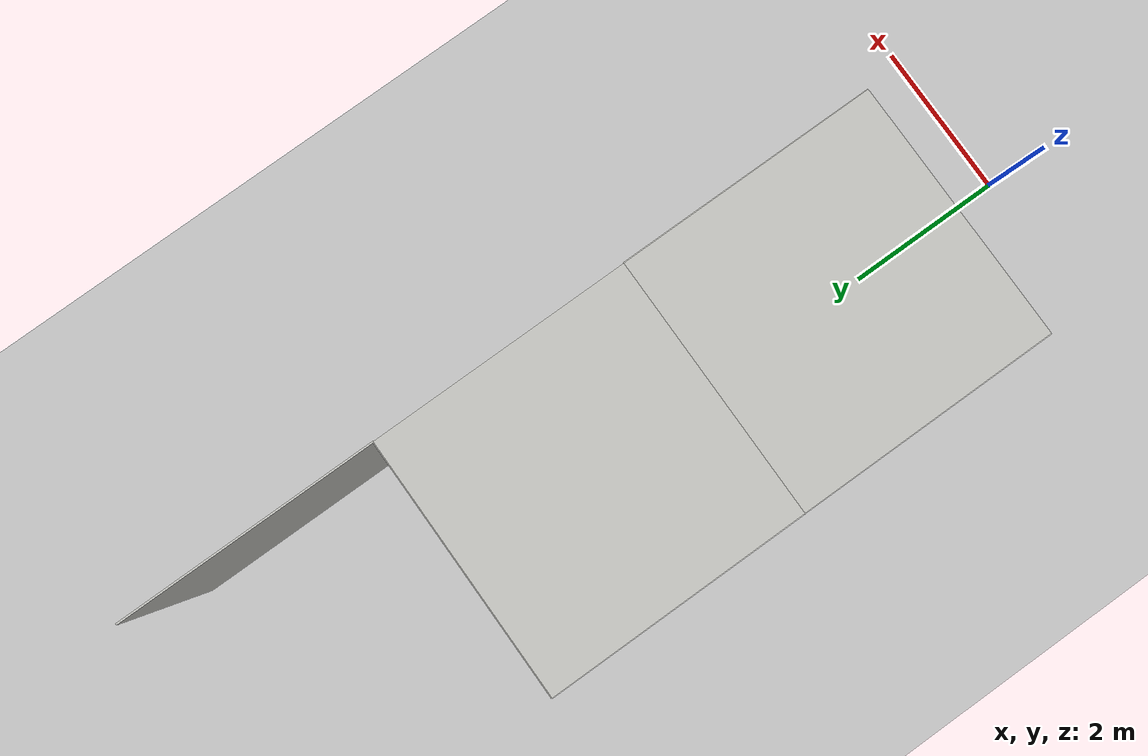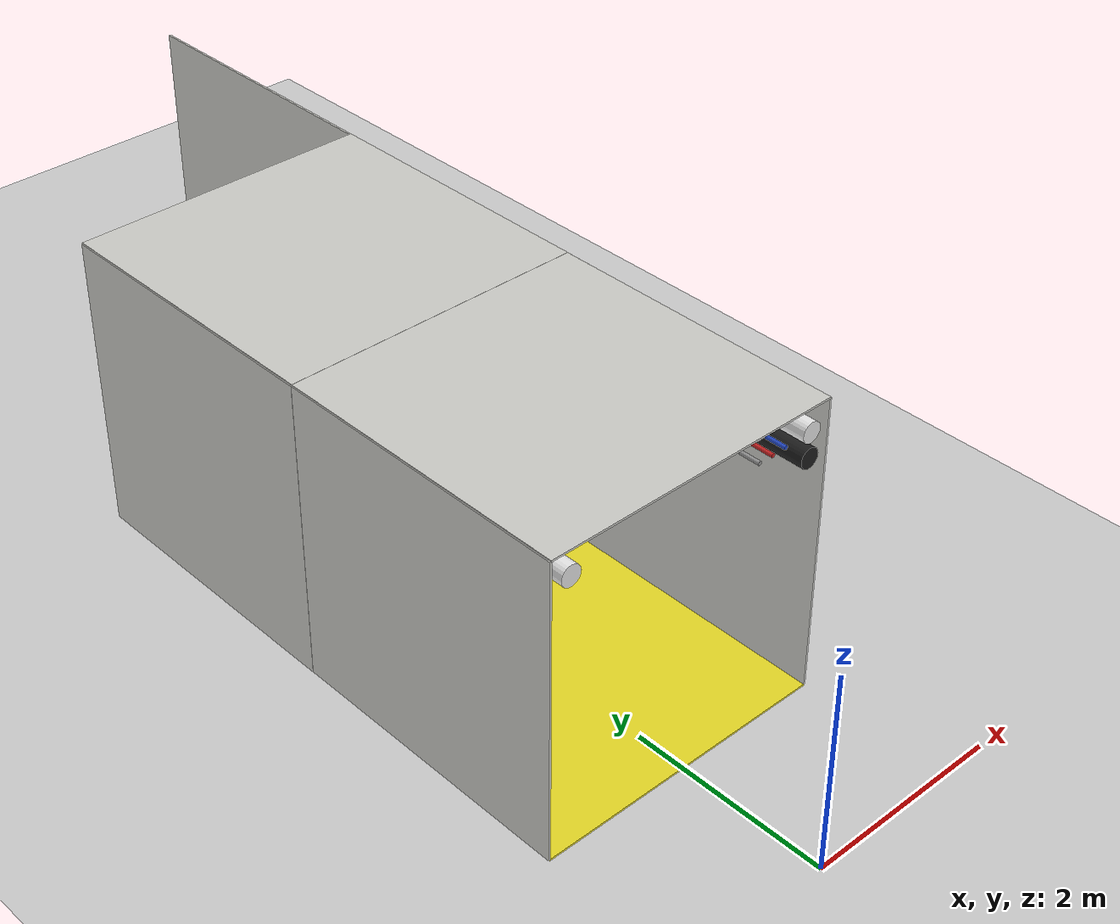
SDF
<sdf version="1.6">
 <world name="default">
  <model name="ground_plane">
   <static>1</static>
   <link name="link">
    <collision name="collision">
     <geometry><plane><normal>0 0 1</normal><size>200 200</size></plane></geometry>
     <surface><friction><ode><mu>100</mu><mu2>50</mu2></ode></friction></surface>
    </collision>
    <visual name="visual">
     <cast_shadows>0</cast_shadows>
     <geometry><plane><normal>0 0 1</normal><size>200 200</size></plane></geometry>
     <material>
      <script><uri>file://media/materials/scripts/gazebo.material</uri><name>Gazebo/Grey</name></script>
     </material>
    </visual>
   </link>
  </model>
  <model name="white_pipe_left_0_1_0_1">
   <static>1</static>
   <pose>0.0 3.0 2.76 0.0 0.0 0.0</pose>
   <link name="link_0">
    <visual name="visual">
     <pose>-1.3 0 0 1.57 0 0</pose>
     <geometry><cylinder><radius>0.1</radius><length>3</length></cylinder></geometry>
     <material>
      <script><uri>file://media/materials/scripts/gazebo.material</uri><name>Gazebo/White</name></script>
     </material>
    </visual>
    <collision name="collision">
     <pose>-1.3 0 0 1.57 0 0</pose>
     <geometry><cylinder><radius>0.1</radius><length>3</length></cylinder></geometry>
    </collision>
   </link>
  </model>
  <model name="white_pipe_right_0_1_0_1">
   <static>1</static>
   <pose>0.0 3.0 2.76 0.0 0.0 0.0</pose>
   <link name="link_0">
    <visual name="visual">
     <pose>1.3 0 0 1.57 0 0</pose>
     <geometry><cylinder><radius>0.1</radius><length>3</length></cylinder></geometry>
     <material>
      <script><uri>file://media/materials/scripts/gazebo.material</uri><name>Gazebo/White</name></script>
     </material>
    </visual>
    <collision name="collision">
     <pose>1.3 0 0 1.57 0 0</pose>
     <geometry><cylinder><radius>0.1</radius><length>3</length></cylinder></geometry>
    </collision>
   </link>
  </model>
  <model name="black_pipe_right_0_1_0_1">
   <static>1</static>
   <pose>0.0 3.0 2.76 0.0 0.0 0.0</pose>
   <link name="link_0">
    <visual name="visual">
     <pose>1.3 0 -0.25 1.57 0 0</pose>
     <geometry><cylinder><radius>0.1</radius><length>3</length></cylinder></geometry>
     <material>
      <script><uri>file://media/materials/scripts/gazebo.material</uri><name>Gazebo/Black</name></script>
     </material>
    </visual>
    <collision name="collision">
     <pose>1.3 0 -0.25 1.57 0 0</pose>
     <geometry><cylinder><radius>0.1</radius><length>3</length></cylinder></geometry>
    </collision>
   </link>
  </model>
  <model name="grey_pipe_right_0_1_0_1">
   <static>1</static>
   <pose>0.0 3.0 2.76 0.0 0.0 0.0</pose>
   <link name="link_0">
    <visual name="visual">
     <pose>0.7 0 0 1.57 0 0</pose>
     <geometry><cylinder><radius>0.02</radius><length>3</length></cylinder></geometry>
     <material>
      <script><uri>file://media/materials/scripts/gazebo.material</uri><name>Gazebo/Grey</name></script>
     </material>
    </visual>
    <collision name="collision">
     <pose>0.7 0 0 1.57 0 0</pose>
     <geometry><cylinder><radius>0.02</radius><length>3</length></cylinder></geometry>
    </collision>
   </link>
  </model>
  <model name="red_pipe_right_0_1_0_1">
   <static>1</static>
   <pose>0.0 3.0 2.76 0.0 0.0 0.0</pose>
   <link name="link_0">
    <visual name="visual">
     <pose>0.85 0 0 1.57 0 0</pose>
     <geometry><cylinder><radius>0.02</radius><length>3</length></cylinder></geometry>
     <material>
      <script><uri>file://media/materials/scripts/gazebo.material</uri><name>Gazebo/Red</name></script>
     </material>
    </visual>
    <collision name="collision">
     <pose>0.85 0 0 1.57 0 0</pose>
     <geometry><cylinder><radius>0.02</radius><length>3</length></cylinder></geometry>
    </collision>
   </link>
  </model>
  <model name="blue_pipe_right_0_1_0_1">
   <static>1</static>
   <pose>0.0 3.0 2.76 0.0 0.0 0.0</pose>
   <link name="link_0">
    <visual name="visual">
     <pose>1 0 0 1.57 0 0</pose>
     <geometry><cylinder><radius>0.02</radius><length>3</length></cylinder></geometry>
     <material>
      <script><uri>file://media/materials/scripts/gazebo.material</uri><name>Gazebo/Blue</name></script>
     </material>
    </visual>
    <collision name="collision">
     <pose>1 0 0 1.57 0 0</pose>
     <geometry><cylinder><radius>0.02</radius><length>3</length></cylinder></geometry>
    </collision>
   </link>
  </model>
  <model name="white_pipe_right_0_2_0_2">
   <static>1</static>
   <pose>0.0 6.0 2.76 0.0 0.0 0.0</pose>
   <link name="link_0">
    <visual name="visual">
     <pose>1.3 0 0 1.57 0 0</pose>
     <geometry><cylinder><radius>0.1</radius><length>3</length></cylinder></geometry>
     <material>
      <script><uri>file://media/materials/scripts/gazebo.material</uri><name>Gazebo/White</name></script>
     </material>
    </visual>
    <collision name="collision">
     <pose>1.3 0 0 1.57 0 0</pose>
     <geometry><cylinder><radius>0.1</radius><length>3</length></cylinder></geometry>
    </collision>
   </link>
  </model>
  <model name="black_pipe_right_0_2_0_2">
   <static>1</static>
   <pose>0.0 6.0 2.76 0.0 0.0 0.0</pose>
   <link name="link_0">
    <visual name="visual">
     <pose>1.3 0 -0.25 1.57 0 0</pose>
     <geometry><cylinder><radius>0.1</radius><length>3</length></cylinder></geometry>
     <material>
      <script><uri>file://media/materials/scripts/gazebo.material</uri><name>Gazebo/Black</name></script>
     </material>
    </visual>
    <collision name="collision">
     <pose>1.3 0 -0.25 1.57 0 0</pose>
     <geometry><cylinder><radius>0.1</radius><length>3</length></cylinder></geometry>
    </collision>
   </link>
  </model>
  <model name="grey_pipe_right_0_2_0_2">
   <static>1</static>
   <pose>0.0 6.0 2.76 0.0 0.0 0.0</pose>
   <link name="link_0">
    <visual name="visual">
     <pose>0.7 0 0 1.57 0 0</pose>
     <geometry><cylinder><radius>0.02</radius><length>3</length></cylinder></geometry>
     <material>
      <script><uri>file://media/materials/scripts/gazebo.material</uri><name>Gazebo/Grey</name></script>
     </material>
    </visual>
    <collision name="collision">
     <pose>0.7 0 0 1.57 0 0</pose>
     <geometry><cylinder><radius>0.02</radius><length>3</length></cylinder></geometry>
    </collision>
   </link>
  </model>
  <model name="red_pipe_right_0_2_0_2">
   <static>1</static>
   <pose>0.0 6.0 2.76 0.0 0.0 0.0</pose>
   <link name="link_0">
    <visual name="visual">
     <pose>0.85 0 0 1.57 0 0</pose>
     <geometry><cylinder><radius>0.02</radius><length>3</length></cylinder></geometry>
     <material>
      <script><uri>file://media/materials/scripts/gazebo.material</uri><name>Gazebo/Red</name></script>
     </material>
    </visual>
    <collision name="collision">
     <pose>0.85 0 0 1.57 0 0</pose>
     <geometry><cylinder><radius>0.02</radius><length>3</length></cylinder></geometry>
    </collision>
   </link>
  </model>
  <model name="blue_pipe_right_0_2_0_2">
   <static>1</static>
   <pose>0.0 6.0 2.76 0.0 0.0 0.0</pose>
   <link name="link_0">
    <visual name="visual">
     <pose>1 0 0 1.57 0 0</pose>
     <geometry><cylinder><radius>0.02</radius><length>3</length></cylinder></geometry>
     <material>
      <script><uri>file://media/materials/scripts/gazebo.material</uri><name>Gazebo/Blue</name></script>
     </material>
    </visual>
    <collision name="collision">
     <pose>1 0 0 1.57 0 0</pose>
     <geometry><cylinder><radius>0.02</radius><length>3</length></cylinder></geometry>
    </collision>
   </link>
  </model>
  <model name="wall_right_0_1_0_1">
   <static>1</static>
   <pose>1.5 3.0 1.5 0.0 0.0 1.57</pose>
   <link name="link">
    <collision name="collision"><geometry><box><size>3 0.02 3</size></box></geometry></collision>
    <visual name="visual">
     <material>
      <script><name>Gazebo/CeilingTiled</name><uri>file://media/materials/scripts/gazebo.material</uri></script>
      <ambient>1 1 1 1</ambient>
     </material>
     <geometry><box><size>3 0.02 3</size></box></geometry>
    </visual>
   </link>
  </model>
  <model name="wall_left_0_1_0_1">
   <static>1</static>
   <pose>-1.5 3.0 1.5 0.0 0.0 1.57</pose>
   <link name="link">
    <collision name="collision"><geometry><box><size>3 0.02 3</size></box></geometry></collision>
    <visual name="visual">
     <material>
      <script><name>Gazebo/CeilingTiled</name><uri>file://media/materials/scripts/gazebo.material</uri></script>
      <ambient>1 1 1 1</ambient>
     </material>
     <geometry><box><size>3 0.02 3</size></box></geometry>
    </visual>
   </link>
  </model>
  <model name="wall_top_0_1_0_1">
   <static>1</static>
   <pose>0.0 3.0 3.0 1.57 0.0 0.0</pose>
   <link name="link">
    <collision name="collision"><geometry><box><size>3 0.02 3</size></box></geometry></collision>
    <visual name="visual">
     <material>
      <script><name>Gazebo/CeilingTiled</name><uri>file://media/materials/scripts/gazebo.material</uri></script>
      <ambient>1 1 1 1</ambient>
     </material>
     <geometry><box><size>3 0.02 3</size></box></geometry>
    </visual>
   </link>
  </model>
  <model name="wall_bottom_0_1_0_1">
   <static>1</static>
   <pose>0.0 3.0 0.0 0.0 0.0 0.0</pose>
   <link name="link">
    <collision name="collision"><geometry><box><size>3 3 0.02</size></box></geometry></collision>
    <visual name="visual">
     <material>
      <script><name>Gazebo/Yellow</name><uri>file://media/materials/scripts/gazebo.material</uri></script>
     </material>
     <geometry><box><size>3 3 0.02</size></box></geometry>
    </visual>
   </link>
  </model>
  <model name="wall_front_0_2_0_2">
   <static>1</static>
   <pose>0.0 7.5 1.5 0.0 0.0 0.0</pose>
   <link name="link">
    <collision name="collision"><geometry><box><size>3 0.02 3</size></box></geometry></collision>
    <visual name="visual">
     <material>
      <script><name>Gazebo/CeilingTiled</name><uri>file://media/materials/scripts/gazebo.material</uri></script>
      <ambient>1 1 1 1</ambient>
     </material>
     <geometry><box><size>3 0.02 3</size></box></geometry>
    </visual>
   </link>
  </model>
  <model name="wall_left_0_2_0_2">
   <static>1</static>
   <pose>-1.5 6.0 1.5 0.0 0.0 1.57</pose>
   <link name="link">
    <collision name="collision"><geometry><box><size>3 0.02 3</size></box></geometry></collision>
    <visual name="visual">
     <material>
      <script><name>Gazebo/CeilingTiled</name><uri>file://media/materials/scripts/gazebo.material</uri></script>
      <ambient>1 1 1 1</ambient>
     </material>
     <geometry><box><size>3 0.02 3</size></box></geometry>
    </visual>
   </link>
  </model>
  <model name="wall_top_0_2_0_2">
   <static>1</static>
   <pose>0.0 6.0 3.0 1.57 0.0 0.0</pose>
   <link name="link">
    <collision name="collision"><geometry><box><size>3 0.02 3</size></box></geometry></collision>
    <visual name="visual">
     <material>
      <script><name>Gazebo/CeilingTiled</name><uri>file://media/materials/scripts/gazebo.material</uri></script>
      <ambient>1 1 1 1</ambient>
     </material>
     <geometry><box><size>3 0.02 3</size></box></geometry>
    </visual>
   </link>
  </model>
  <model name="wall_bottom_0_2_0_2">
   <static>1</static>
   <pose>0.0 6.0 0.0 0.0 0.0 0.0</pose>
   <link name="link">
    <collision name="collision"><geometry><box><size>3 3 0.02</size></box></geometry></collision>
    <visual name="visual">
     <material>
      <script><name>Gazebo/Yellow</name><uri>file://media/materials/scripts/gazebo.material</uri></script>
     </material>
     <geometry><box><size>3 3 0.02</size></box></geometry>
    </visual>
   </link>
  </model>
  <model name="wall_left_1_3_0_1">
   <static>1</static>
   <pose>1.5 9.0 1.5 0.0 0.0 1.57</pose>
   <link name="link">
    <collision name="collision"><geometry><box><size>3 0.02 3</size></box></geometry></collision>
    <visual name="visual">
     <material>
      <script><name>Gazebo/CeilingTiled</name><uri>file://media/materials/scripts/gazebo.material</uri></script>
      <ambient>1 1 1 1</ambient>
     </material>
     <geometry><box><size>3 0.02 3</size></box></geometry>
    </visual>
   </link>
  </model>
 </world>
</sdf>
